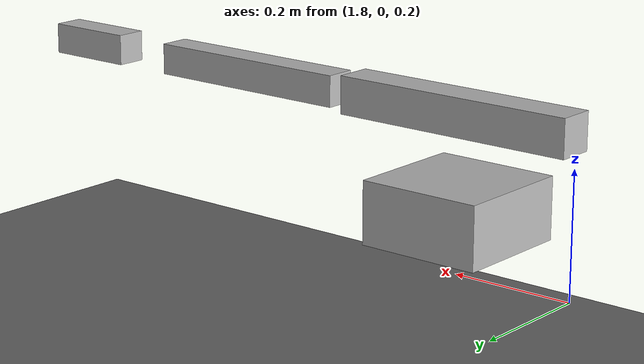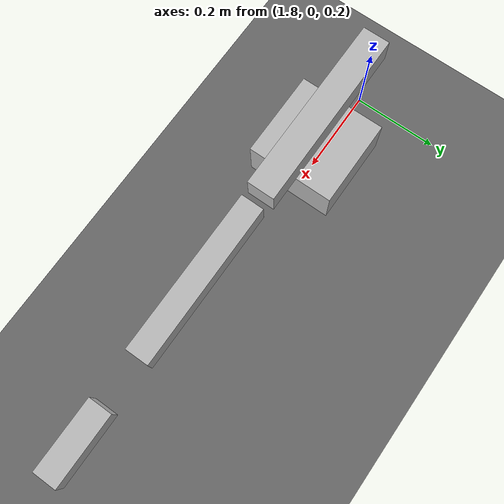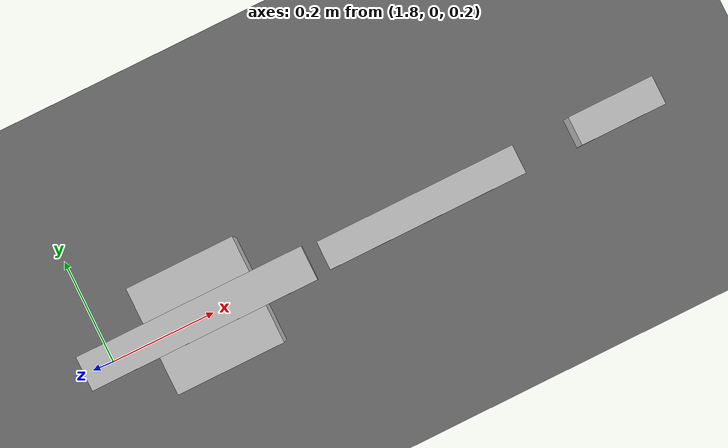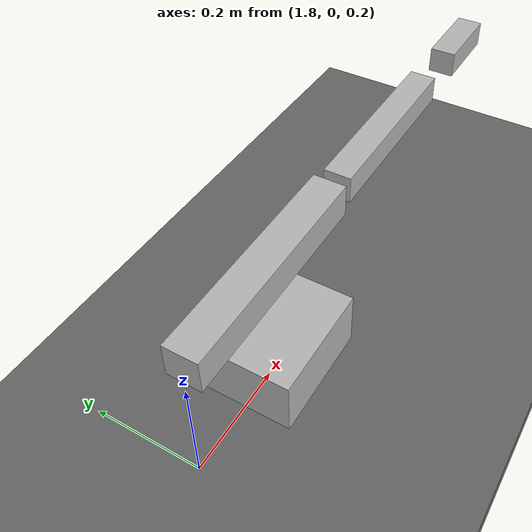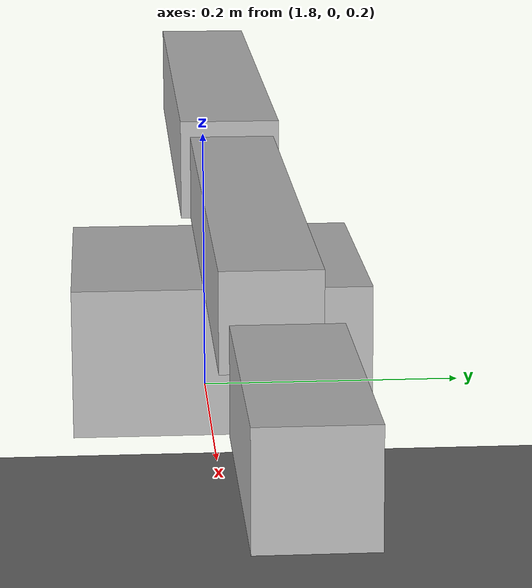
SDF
<sdf version="1.7">
 <world name="icub_world">
  <plugin filename="gz-sim-physics-system" name="gz::sim::systems::Physics"/>
  <plugin filename="gz-sim-scene-broadcaster-system" name="gz::sim::systems::SceneBroadcaster"/>
  <plugin filename="gz-sim-user-commands-system" name="gz::sim::systems::UserCommands"/>
  <gravity>0 0 -9.81</gravity>
  <model name="custom_ground">
   <static>true</static>
   <link name="ground_link">
    <collision name="ground_collision"><geometry><box><size>50 50 0.1</size></box></geometry></collision>
    <visual name="ground_visual">
     <geometry><box><size>50 50 0.1</size></box></geometry>
     <material><ambient>0.3 0.3 0.3 1</ambient><diffuse>0.4 0.4 0.4 1</diffuse></material>
    </visual>
   </link>
  </model>
  <light name="sun_light" type="directional">
   <pose>0 0 10 0 0 0</pose>
   <diffuse>1 1 1 1</diffuse>
   <specular>0.5 0.5 0.5 1</specular>
   <direction>-0.5 0.5 -1</direction>
  </light>
  <model name="humanoid_dof_demo">
   <pose>2 0 0.3 0 0 0</pose>
   <link name="base">
    <inertial>
     <mass>1.0</mass>
     <inertia><ixx>0.01</ixx><iyy>0.01</iyy><izz>0.01</izz><ixy>0</ixy><ixz>0</ixz><iyz>0</iyz></inertia>
    </inertial>
    <collision name="base_collision"><geometry><box><size>0.2 0.2 0.1</size></box></geometry></collision>
    <visual name="base_visual"><geometry><box><size>0.2 0.2 0.1</size></box></geometry></visual>
   </link>
   <link name="upper_arm">
    <pose>0 0 0.15 0 0 0</pose>
    <inertial>
     <mass>0.5</mass>
     <inertia><ixx>0.01</ixx><iyy>0.01</iyy><izz>0.01</izz><ixy>0</ixy><ixz>0</ixz><iyz>0</iyz></inertia>
    </inertial>
    <collision name="upper_arm_collision"><geometry><box><size>0.4 0.06 0.06</size></box></geometry></collision>
    <visual name="upper_arm_visual"><geometry><box><size>0.4 0.06 0.06</size></box></geometry></visual>
   </link>
   <link name="forearm">
    <pose>0.4 0 0.15 0 0 0</pose>
    <inertial>
     <mass>0.4</mass>
     <inertia><ixx>0.008</ixx><iyy>0.008</iyy><izz>0.008</izz><ixy>0</ixy><ixz>0</ixz><iyz>0</iyz></inertia>
    </inertial>
    <collision name="forearm_collision"><geometry><box><size>0.35 0.05 0.05</size></box></geometry></collision>
    <visual name="forearm_visual"><geometry><box><size>0.35 0.05 0.05</size></box></geometry></visual>
   </link>
   <link name="hand">
    <pose>0.75 0 0.15 0 0 0</pose>
    <inertial>
     <mass>0.3</mass>
     <inertia><ixx>0.005</ixx><iyy>0.005</iyy><izz>0.005</izz><ixy>0</ixy><ixz>0</ixz><iyz>0</iyz></inertia>
    </inertial>
    <collision name="hand_collision"><geometry><box><size>0.15 0.05 0.05</size></box></geometry></collision>
    <visual name="hand_visual"><geometry><box><size>0.15 0.05 0.05</size></box></geometry></visual>
   </link>
   <joint name="j_shoulder" type="revolute">
    <parent>base</parent>
    <child>upper_arm</child>
    <pose>0 0 0.1 0 0 0</pose>
    <axis><xyz>0 0 1</xyz><limit><lower>-1.57</lower><upper>1.57</upper></limit></axis>
   </joint>
   <joint name="j_elbow" type="revolute">
    <parent>upper_arm</parent>
    <child>forearm</child>
    <pose>0.4 0 0 0 0 0</pose>
    <axis><xyz>0 0 1</xyz><limit><lower>0</lower><upper>2.5</upper></limit></axis>
   </joint>
   <joint name="j_wrist" type="revolute">
    <parent>forearm</parent>
    <child>hand</child>
    <pose>0.35 0 0 0 0 0</pose>
    <axis><xyz>0 0 1</xyz><limit><lower>-1.57</lower><upper>1.57</upper></limit></axis>
   </joint>
   <plugin filename="gz-sim-joint-position-controller-system" name="gz::sim::systems::JointPositionController">
    <joint_name>j_shoulder</joint_name>
   </plugin>
   <plugin filename="gz-sim-joint-position-controller-system" name="gz::sim::systems::JointPositionController">
    <joint_name>j_elbow</joint_name>
   </plugin>
   <plugin filename="gz-sim-joint-position-controller-system" name="gz::sim::systems::JointPositionController">
    <joint_name>j_wrist</joint_name>
   </plugin>
  </model>
 </world>
</sdf>
